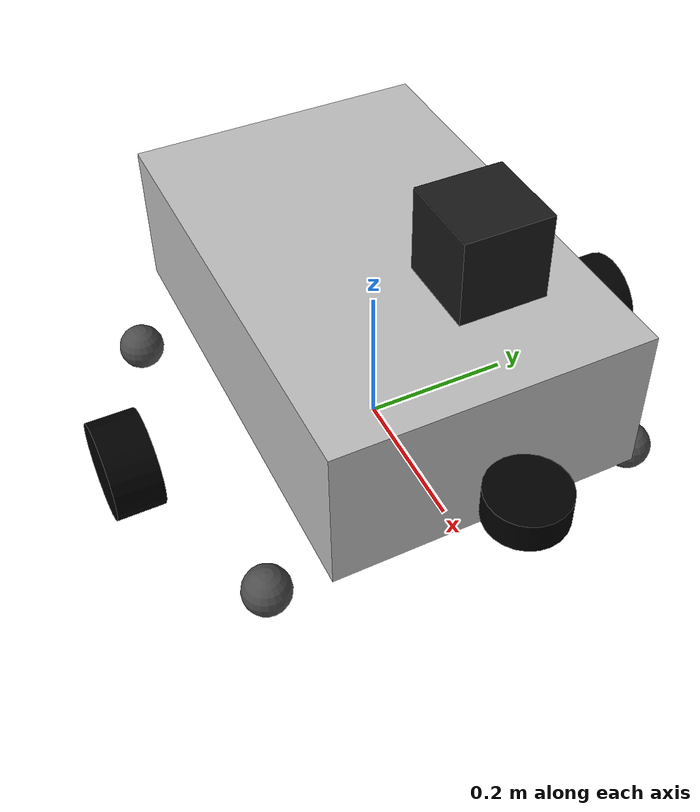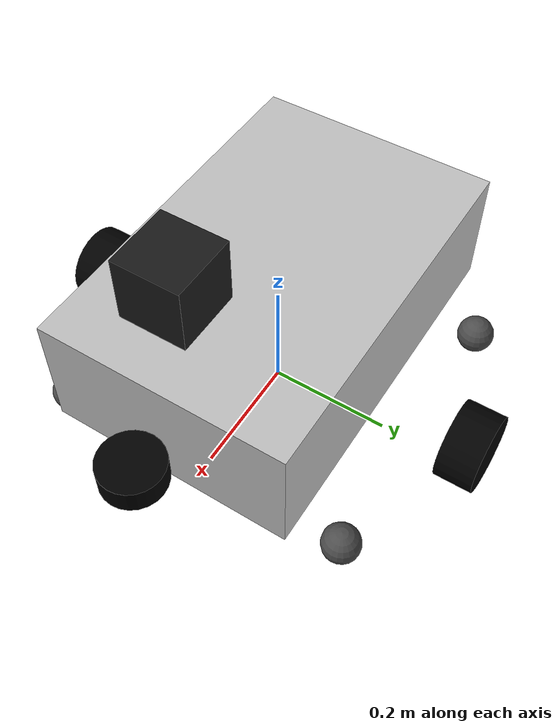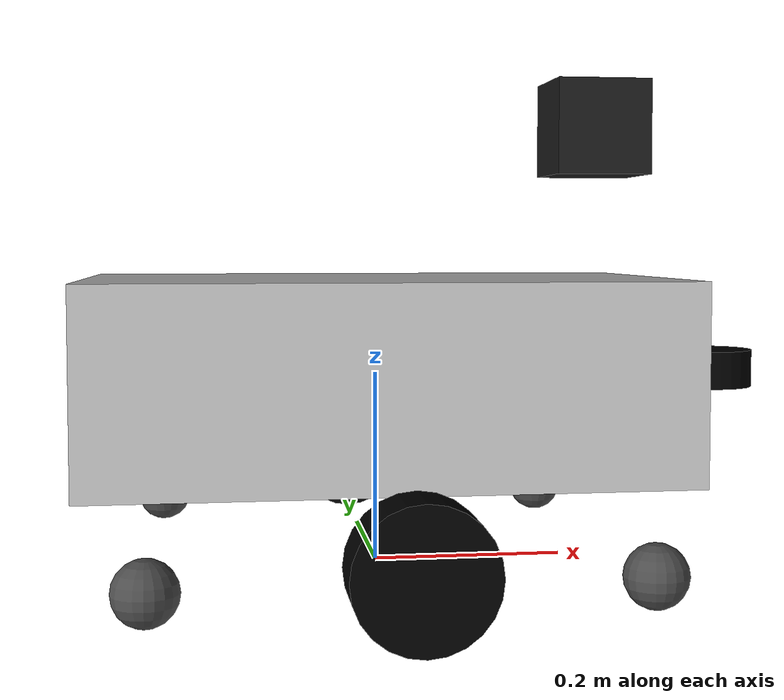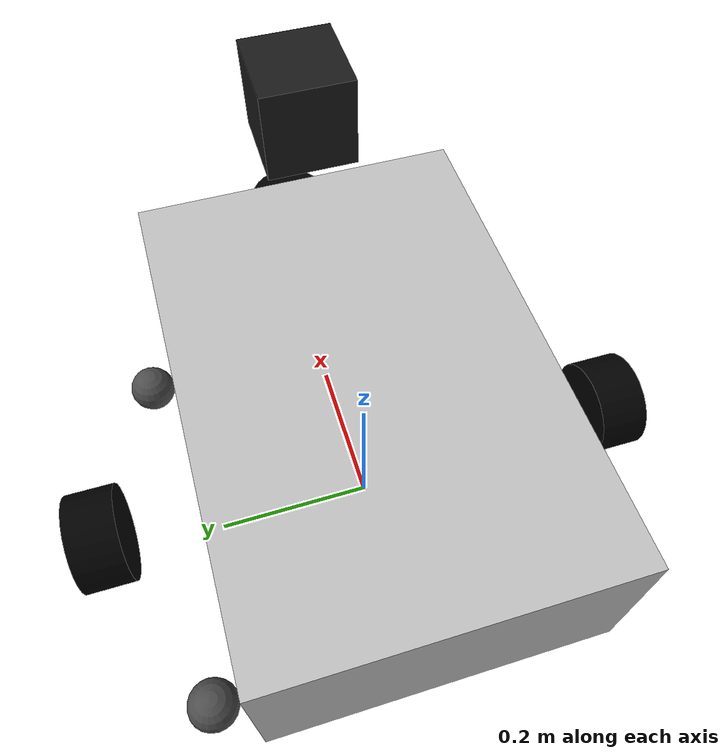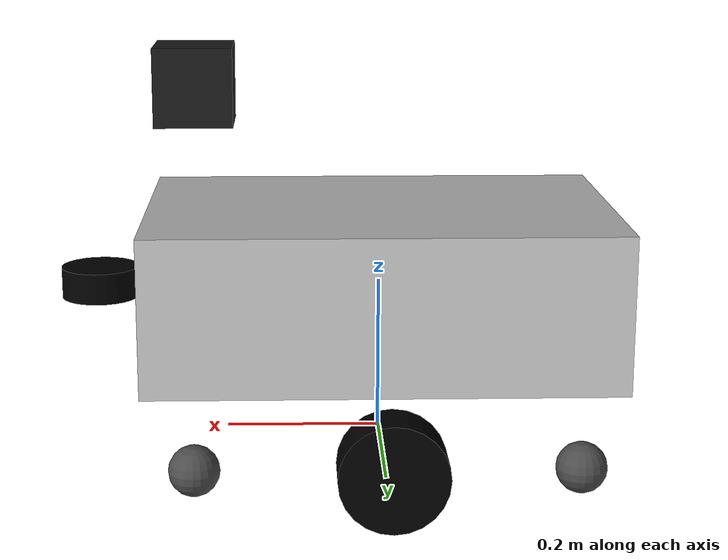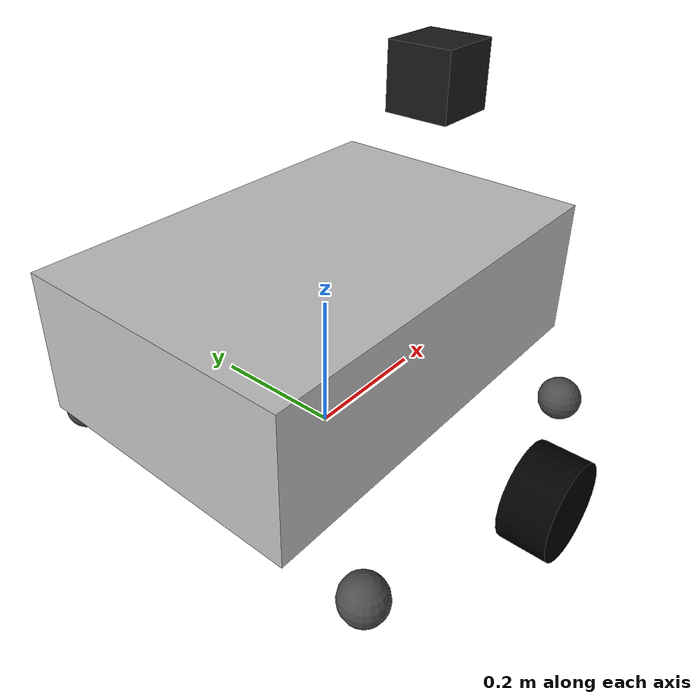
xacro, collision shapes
<?xml version="1.0"?>
<robot xmlns:xacro="http://www.ros.org/wiki/xacro"  name="robot">

    <xacro:arg name="use_ros2_control" default="true"/>
    <xacro:arg name="sim_mode" default="false"/>

    <xacro:include filename="robot_core.xacro" />
    <xacro:include filename="lidar.xacro" />
    <xacro:if value="$(arg use_ros2_control)">
        <xacro:include filename="ros2_control.xacro" />
    </xacro:if>
    <xacro:unless value="$(arg use_ros2_control)">
        <xacro:include filename="ignition_control.xacro" />
    </xacro:unless>

</robot>

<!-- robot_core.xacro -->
<robot xmlns:xacro="http://www.ros.org/wiki/xacro" >

    <xacro:include filename="inertial_macros.xacro"/>

    <!-- MATERIALS -->
    <material name="white">
        <color rgba="1 1 1 1" />
    </material>

    <material name="orange">
        <color rgba="1 0.3 0.1 1"/>
    </material>

    <material name="blue">
        <color rgba="0.2 0.2 1 1"/>
    </material>

    <material name="black">
        <color rgba="0 0 0 1"/>
    </material>

    <material name="red">
        <color rgba="1 0 0 1"/>
    </material>

    <material name="aluminum">
        <color rgba="0.75 0.75 0.75 1"/>
    </material>

    <material name="matte_black">
        <color rgba="0.1 0.1 0.1 1"/>
    </material>

    <material name="dark_ash">
        <color rgba="0.3 0.3 0.3 1"/>
    </material>

    <link name="base_link">
        <inertial>
            <mass value="0.001"/>
            <origin xyz="0 0 0"/>
            <inertia ixx="1e-6" ixy="0" ixz="0" iyy="1e-6" iyz="0" izz="1e-6"/>
        </inertial>
    </link>

    <link name="base_footprint">
    </link>

    <joint name="base_footprint_joint" type="fixed">
        <parent link="base_link"/>
        <child link="base_footprint"/>
        <origin xyz="0 0 0" rpy="0 0 0"/>
    </joint>

    <joint name="chassis_joint" type="fixed">
        <parent link="base_link"/>
        <child link="chassis"/>
        <origin xyz="0 0 0.081"/> <!-- Lowered from 0.117 to align 64mm wheels -->
    </joint>

    <link name="chassis">
        <visual>
            <origin xyz="0 0 0" rpy="0 0 0"/>
            <geometry>
                <mesh filename="package://cleaning_robot_description/meshes/chassis_link.stl"/>
            </geometry>
            <material name="aluminum"/>
        </visual>
        <collision>
            <origin xyz="0 0 0.12" rpy="0 0 0"/>
            <geometry>
                <box size="0.6 0.4 0.2"/>
            </geometry>
        </collision>
        <xacro:inertial_box mass="7.8" x="0.6" y="0.4" z="0.2">
            <origin xyz="0 0 0.12" rpy="0 0 0"/>
        </xacro:inertial_box>
    </link>
    <gazebo reference="chassis">
        <material>Gazebo/Grey</material>
    </gazebo>

    <!-- RIGHT WHEEL -->
    <joint name="right_wheel_joint" type="continuous">
        <parent link="chassis"/>
        <child link="right_wheel"/>
        <origin xyz="2.8314E-05 -0.347 -0.017" rpy="0 0 0"/>
        <axis xyz="0 1 0"/>
    </joint>

    <link name="right_wheel">
        <visual>
            <origin xyz="0 0 0" rpy="0 0 0"/>
            <geometry>
                <mesh filename="package://cleaning_robot_description/meshes/right_motor_link.stl"/>
            </geometry>
             <material name="black"/>
        </visual>
        <collision>
            <origin xyz="0 0 0" rpy="1.57079 0 0"/>
            <geometry>
                <cylinder radius="0.064" length="0.063"/>
            </geometry>
        </collision>
        <xacro:inertial_cylinder mass="0.6" length="0.063" radius="0.064">
            <origin xyz="0 0 0" rpy="0 0 0"/>
        </xacro:inertial_cylinder>
    </link>
    <gazebo reference="right_wheel">
        <material>Gazebo/Black</material>
        <mu1>2.0</mu1>
        <mu2>2.0</mu2>
        <kp>10000000.0</kp>
        <kd>1.0</kd>
    </gazebo>

    <!-- LEFT WHEEL -->
    <joint name="left_wheel_joint" type="continuous">
        <parent link="chassis"/>
        <child link="left_wheel"/>
        <origin xyz="2.8314E-05 0.347 -0.017" rpy="0 0 0"/>
        <axis xyz="0 1 0"/>
    </joint>

    <link name="left_wheel">
         <visual>
            <origin xyz="0 0 0" rpy="0 0 0"/>
            <geometry>
                <mesh filename="package://cleaning_robot_description/meshes/left_motor_link.stl"/>
            </geometry>
            <material name="black"/>
        </visual>
        <collision>
            <origin xyz="0 0 0" rpy="1.57079 0 0"/>
            <geometry>
                <cylinder radius="0.064" length="0.063"/>
            </geometry>
        </collision>
        <xacro:inertial_cylinder mass="0.6" length="0.063" radius="0.064">
            <origin xyz="0 0 0" rpy="0 0 0"/>
        </xacro:inertial_cylinder>
    </link>
     <gazebo reference="left_wheel">
        <material>Gazebo/Black</material>
        <mu1>2.0</mu1>
        <mu2>2.0</mu2>
        <kp>10000000.0</kp>
        <kd>1.0</kd>
    </gazebo>

    <!-- CASTERS -->
    <!-- Front Left -->
    <joint name="front_left_caster_joint" type="fixed">
         <parent link="chassis"/>
         <child link="front_left_caster"/>
         <origin xyz="0.23102 0.254 -0.0189" rpy="0 0 0"/>
    </joint>
    <link name="front_left_caster">
         <visual>
            <geometry>
                <mesh filename="package://cleaning_robot_description/meshes/front_left_caster_link.stl"/>
            </geometry>
            <material name="dark_ash"/>
         </visual>
         <collision>
            <origin xyz="0 0 -0.03" rpy="0 0 0"/>
            <geometry>
                <sphere radius="0.031"/>
            </geometry>
        </collision>
         <inertial>
            <origin xyz="0.0088 -0.006 -0.039" rpy="0 0 0"/>
            <mass value="0.1"/>
            <inertia ixx="0.0001" ixy="0" ixz="0" iyy="0.0001" iyz="0" izz="0.0001"/>
         </inertial>
    </link>
    <gazebo reference="front_left_caster">
        <material>Gazebo/DarkGrey</material>
        <mu1>0.05</mu1>
        <mu2>0.05</mu2>
        <kp>1000000.0</kp>
        <kd>1.0</kd>
    </gazebo>

    <!-- Front Right -->
    <joint name="front_right_caster_joint" type="fixed">
         <parent link="chassis"/>
         <child link="front_right_caster"/>
         <origin xyz="0.23103 -0.254 -0.0189" rpy="0 0 0"/>
    </joint>
    <link name="front_right_caster">
         <visual>
            <geometry>
                <mesh filename="package://cleaning_robot_description/meshes/front_right_caster_link.stl"/>
            </geometry>
             <material name="dark_ash"/>
         </visual>
          <collision>
            <origin xyz="0 0 -0.03" rpy="0 0 0"/>
            <geometry>
                <sphere radius="0.031"/>
            </geometry>
         </collision>
         <inertial>
            <origin xyz="0.0107 0 -0.039" rpy="0 0 0"/>
             <mass value="0.1"/>
            <inertia ixx="0.0001" ixy="0" ixz="0" iyy="0.0001" iyz="0" izz="0.0001"/>
         </inertial>
    </link>
    <gazebo reference="front_right_caster">
        <material>Gazebo/DarkGrey</material>
        <mu1>0.05</mu1>
        <mu2>0.05</mu2>
        <kp>1000000.0</kp>
        <kd>1.0</kd>
    </gazebo>

    <!-- Back Left -->
    <joint name="back_left_caster_joint" type="fixed">
         <parent link="chassis"/>
         <child link="back_left_caster"/>
         <origin xyz="-0.23097 0.254 -0.0189" rpy="0 0 0"/>
    </joint>
    <link name="back_left_caster">
         <visual>
            <geometry>
                <mesh filename="package://cleaning_robot_description/meshes/back_left_caster_link.stl"/>
            </geometry>
             <material name="dark_ash"/>
         </visual>
          <collision>
            <origin xyz="0 0 -0.03" rpy="0 0 0"/>
            <geometry>
                <sphere radius="0.031"/>
            </geometry>
         </collision>
         <inertial>
            <origin xyz="-0.0107 0 -0.039" rpy="0 0 0"/>
            <mass value="0.1"/>
            <inertia ixx="0.0001" ixy="0" ixz="0" iyy="0.0001" iyz="0" izz="0.0001"/>
         </inertial>
    </link>
    <gazebo reference="back_left_caster">
        <material>Gazebo/DarkGrey</material>
        <mu1>0.05</mu1>
        <mu2>0.05</mu2>
        <kp>1000000.0</kp>
        <kd>1.0</kd>
    </gazebo>

    <!-- Back Right -->
    <joint name="back_right_caster_joint" type="fixed">
         <parent link="chassis"/>
         <child link="back_right_caster"/>
         <origin xyz="-0.23097 -0.254 -0.0189" rpy="0 0 0"/>
    </joint>
     <link name="back_right_caster">
         <visual>
            <geometry>
                <mesh filename="package://cleaning_robot_description/meshes/back_right_caster_link.stl"/>
            </geometry>
             <material name="dark_ash"/>
         </visual>
          <collision>
            <origin xyz="0 0 -0.03" rpy="0 0 0"/>
            <geometry>
                <sphere radius="0.031"/>
            </geometry>
         </collision>
         <inertial>
            <origin xyz="-0.0107 0 -0.039" rpy="0 0 0"/>
            <mass value="0.1"/>
            <inertia ixx="0.0001" ixy="0" ixz="0" iyy="0.0001" iyz="0" izz="0.0001"/>
         </inertial>
    </link>
    <gazebo reference="back_right_caster">
        <material>Gazebo/DarkGrey</material>
        <mu1>0.05</mu1>
        <mu2>0.05</mu2>
        <kp>1000000.0</kp>
        <kd>1.0</kd>
    </gazebo>

    <!-- Arm Mount -->
    <!-- Arm Mount -->
    <joint name="arm_mount_joint" type="fixed">
        <parent link="chassis"/>
        <child link="arm_mount_link"/>
        <origin xyz="0.23655 0 0.3785" rpy="0 0 0"/>
        <axis xyz="0 0 -1"/>
        <limit lower="0" upper="0.585" effort="100" velocity="0.5"/>
    </joint>
    <link name="arm_mount_link">
          <visual>
            <geometry>
                <mesh filename="package://cleaning_robot_description/meshes/arm_mount_link.stl"/>
            </geometry>
             <material name="matte_black"/>
         </visual>
         <collision>
            <origin xyz="0 0 0" rpy="0 0 0"/>
            <geometry>
                <box size="0.1 0.1 0.1"/>
            </geometry>
         </collision>
         <inertial>
            <origin xyz="0.0045 -0.002 0.097" rpy="0 0 0"/>
            <mass value="1.49"/>
            <inertia ixx="0.0034" ixy="-1.4E-6" ixz="-0.00013" iyy="0.0026" iyz="1.9E-7" izz="0.0022"/>
         </inertial>
    </link>
    <gazebo reference="arm_mount_link">
        <material>Gazebo/Black</material>
    </gazebo>

</robot>

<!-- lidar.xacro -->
<robot xmlns:xacro="http://www.ros.org/wiki/xacro" >

    <joint name="laser_joint" type="fixed">
        <parent link="chassis"/>
        <child link="laser_frame"/>
        <origin xyz="0.36475 0 0.12" rpy="0 0 3.14159"/>
    </joint>

    <link name="laser_frame">
        <visual>
            <origin xyz="0 0 0" rpy="0 0 0"/>
            <geometry>
                <mesh filename="package://cleaning_robot_description/meshes/lidar_link.stl"/>
            </geometry>
            <material name="black">
                <color rgba="0 0 0 1"/>
            </material>
        </visual>
        <collision>
            <origin xyz="0 0 0" rpy="0 0 0"/>
            <geometry>
                <cylinder radius="0.05" length="0.04"/>
            </geometry>
        </collision>
        <xacro:inertial_cylinder mass="0.011" length="0.04" radius="0.05">
            <origin xyz="0 0 0" rpy="0 0 0"/>
        </xacro:inertial_cylinder>
    </link>

    <gazebo reference="laser_frame">
        <material>Gazebo/Black</material>

        <sensor name="laser" type="gpu_lidar">
            <pose>0 0 0 0 0 0</pose>
            <visualize>true</visualize>
            <update_rate>10</update_rate>
            <always_on>true</always_on>
            <topic>scan</topic>
            <ignition_frame_id>laser_frame</ignition_frame_id>
            <lidar>
                <scan>
                    <horizontal>
                        <samples>640</samples>
                        <resolution>1.0</resolution>
                        <min_angle>-1.658</min_angle>
                        <max_angle>1.658</max_angle>   <!-- +95° (190° total FOV) -->
                    </horizontal>
                </scan>
                <range>
                    <min>0.05</min>
                    <max>12.0</max>
                    <resolution>0.01</resolution>
                </range>
                <noise>
                    <type>gaussian</type>
                    <mean>0.0</mean>
                    <stddev>0.01</stddev>
                </noise>
            </lidar>
        </sensor>
    </gazebo>

</robot>
